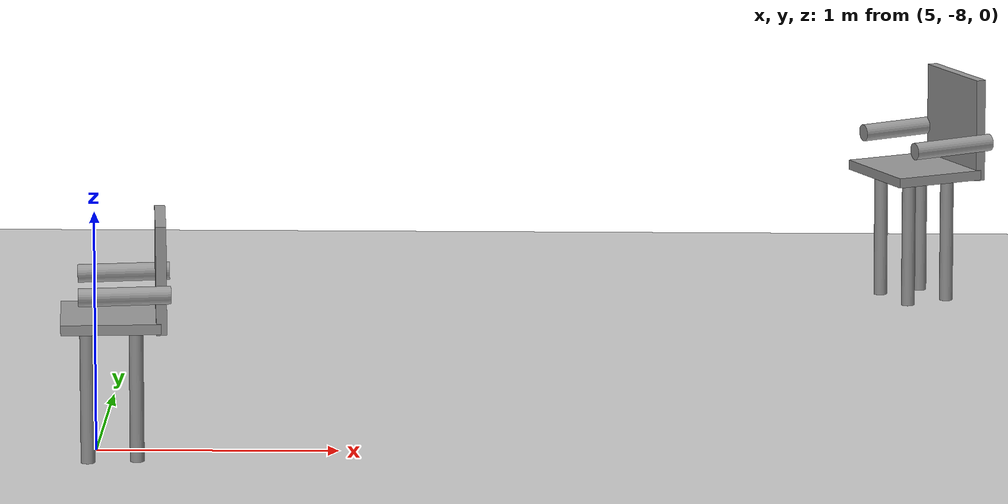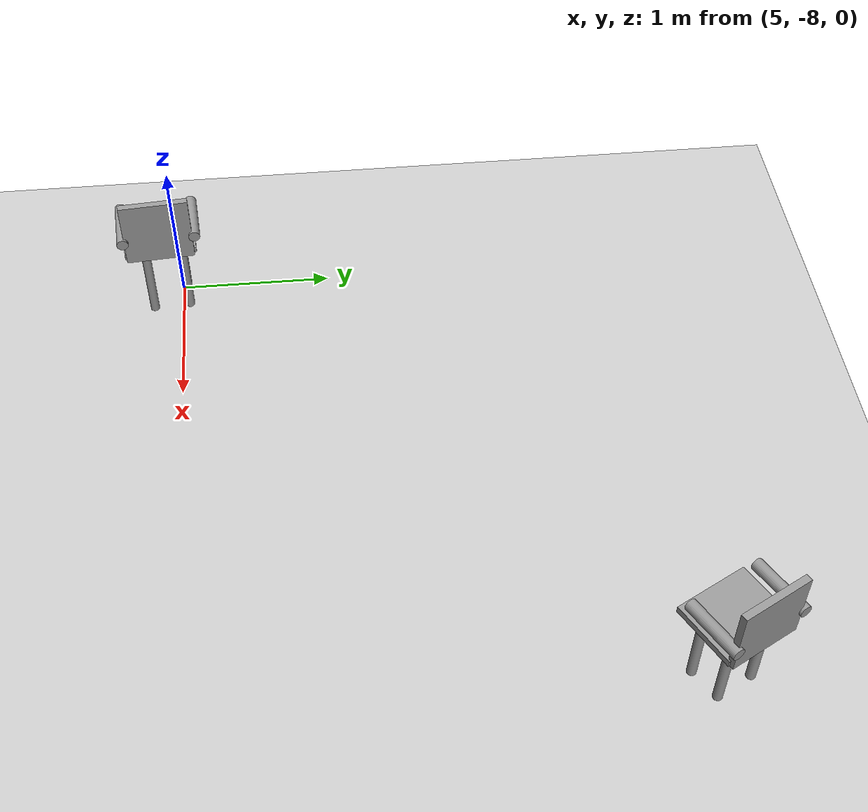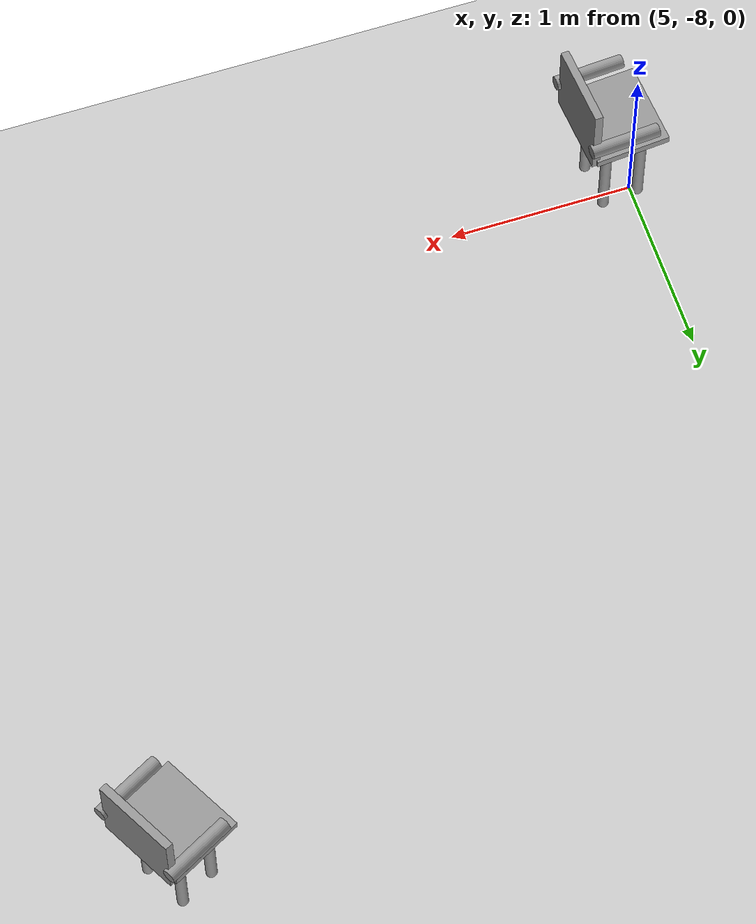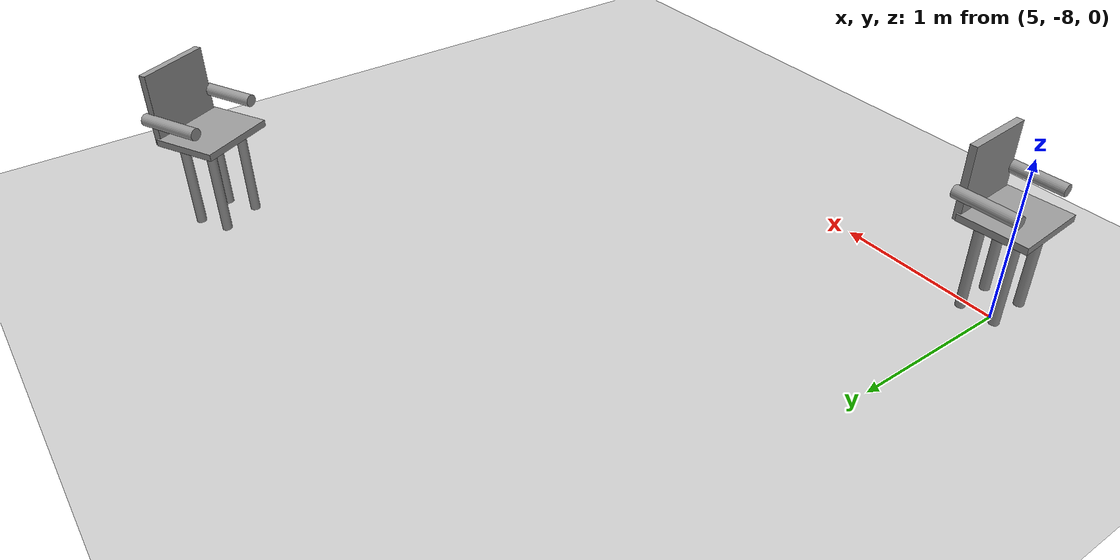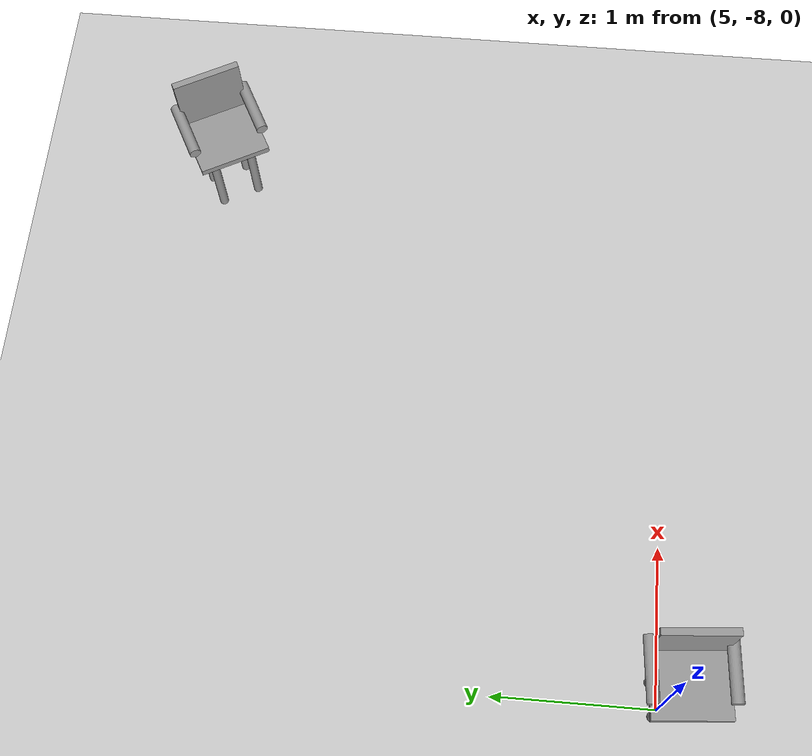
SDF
<sdf version="1.6">
 <world name="default">
  <model name="ground_plane">
   <static>1</static>
   <link name="link">
    <collision name="collision">
     <geometry><plane><normal>0 0 1</normal><size>100 100</size></plane></geometry>
     <surface>
      <contact><collide_bitmask>65535</collide_bitmask></contact>
      <friction><ode><mu>100</mu><mu2>50</mu2></ode></friction>
     </surface>
    </collision>
    <visual name="visual">
     <cast_shadows>0</cast_shadows>
     <geometry><plane><normal>0 0 1</normal><size>100 100</size></plane></geometry>
     <material>
      <script><uri>file://media/materials/scripts/gazebo.material</uri><name>Gazebo/Grey</name></script>
     </material>
    </visual>
   </link>
  </model>
  <model name="chair_clone">
   <link name="link_4">
    <inertial>
     <mass>0.00194051</mass>
     <inertia>
      <ixx>5.14044e-05</ixx>
      <ixy>0</ixy>
      <ixz>0</ixz>
      <iyy>5.14044e-05</iyy>
      <iyz>0</iyz>
      <izz>8.34973e-07</izz>
     </inertia>
    </inertial>
    <pose>-0.140129 -0.127166 -0.209129 0 -0 0</pose>
    <visual name="visual">
     <geometry><cylinder><radius>0.0293355</radius><length>0.561516</length></cylinder></geometry>
     <material>
      <lighting>1</lighting>
      <script><uri>file://media/materials/scripts/gazebo.material</uri><name>Gazebo/Grey</name></script>
      <emissive>0 0 0 1</emissive>
     </material>
    </visual>
    <collision name="collision">
     <geometry><cylinder><radius>0.029336</radius><length>0.561516</length></cylinder></geometry>
     <surface>
      <friction>
       <ode><mu>1</mu><mu2>1</mu2><fdir1>0 0 0</fdir1><slip1>0</slip1><slip2>0</slip2></ode>
       <torsional>
        <coefficient>1</coefficient>
        <patch_radius>0</patch_radius>
        <surface_radius>0</surface_radius>
        <use_patch_radius>1</use_patch_radius>
        <ode><slip>0</slip></ode>
       </torsional>
      </friction>
      <bounce><restitution_coefficient>0</restitution_coefficient><threshold>1e+06</threshold></bounce>
      <contact>
       <collide_without_contact>0</collide_without_contact>
       <collide_without_contact_bitmask>1</collide_without_contact_bitmask>
       <collide_bitmask>1</collide_bitmask>
       <ode>
        <soft_cfm>0</soft_cfm>
        <soft_erp>0.2</soft_erp>
        <kp>1e+13</kp>
        <kd>1</kd>
        <max_vel>0.01</max_vel>
        <min_depth>0</min_depth>
       </ode>
       <bullet>
        <split_impulse>1</split_impulse>
        <split_impulse_penetration_threshold>-0.01</split_impulse_penetration_threshold>
        <soft_cfm>0</soft_cfm>
        <soft_erp>0.2</soft_erp>
        <kp>1e+13</kp>
        <kd>1</kd>
       </bullet>
      </contact>
     </surface>
    </collision>
   </link>
   <link name="link_4_clone">
    <inertial>
     <mass>0.00194051</mass>
     <inertia>
      <ixx>5.14044e-05</ixx>
      <ixy>0</ixy>
      <ixz>0</ixz>
      <iyy>5.14044e-05</iyy>
      <iyz>0</iyz>
      <izz>8.34973e-07</izz>
     </inertia>
    </inertial>
    <pose>-0.139565 0.126187 -0.209129 0 -0 0</pose>
    <visual name="visual">
     <geometry><cylinder><radius>0.0293355</radius><length>0.561516</length></cylinder></geometry>
     <material>
      <lighting>1</lighting>
      <script><uri>file://media/materials/scripts/gazebo.material</uri><name>Gazebo/Grey</name></script>
      <shader type="pixel"/>
      <emissive>0 0 0 1</emissive>
     </material>
    </visual>
    <collision name="collision">
     <geometry><cylinder><radius>0.029336</radius><length>0.561516</length></cylinder></geometry>
     <surface>
      <friction>
       <ode><mu>1</mu><mu2>1</mu2><fdir1>0 0 0</fdir1><slip1>0</slip1><slip2>0</slip2></ode>
       <torsional>
        <coefficient>1</coefficient>
        <patch_radius>0</patch_radius>
        <surface_radius>0</surface_radius>
        <use_patch_radius>1</use_patch_radius>
        <ode><slip>0</slip></ode>
       </torsional>
      </friction>
      <bounce><restitution_coefficient>0</restitution_coefficient><threshold>1e+06</threshold></bounce>
      <contact>
       <collide_without_contact>0</collide_without_contact>
       <collide_without_contact_bitmask>1</collide_without_contact_bitmask>
       <collide_bitmask>1</collide_bitmask>
       <ode>
        <soft_cfm>0</soft_cfm>
        <soft_erp>0.2</soft_erp>
        <kp>1e+13</kp>
        <kd>1</kd>
        <max_vel>0.01</max_vel>
        <min_depth>0</min_depth>
       </ode>
       <bullet>
        <split_impulse>1</split_impulse>
        <split_impulse_penetration_threshold>-0.01</split_impulse_penetration_threshold>
        <soft_cfm>0</soft_cfm>
        <soft_erp>0.2</soft_erp>
        <kp>1e+13</kp>
        <kd>1</kd>
       </bullet>
      </contact>
     </surface>
    </collision>
   </link>
   <link name="link_4_clone_0">
    <inertial>
     <mass>0.00194051</mass>
     <inertia>
      <ixx>5.14044e-05</ixx>
      <ixy>0</ixy>
      <ixz>0</ixz>
      <iyy>5.14044e-05</iyy>
      <iyz>0</iyz>
      <izz>8.34973e-07</izz>
     </inertia>
    </inertial>
    <pose>0.062929 0.13105 -0.209129 0 -0 0</pose>
    <visual name="visual">
     <geometry><cylinder><radius>0.0293355</radius><length>0.561516</length></cylinder></geometry>
     <material>
      <lighting>1</lighting>
      <script><uri>file://media/materials/scripts/gazebo.material</uri><name>Gazebo/Grey</name></script>
      <shader type="pixel"/>
      <emissive>0 0 0 1</emissive>
     </material>
    </visual>
    <collision name="collision">
     <geometry><cylinder><radius>0.029336</radius><length>0.561516</length></cylinder></geometry>
     <surface>
      <friction>
       <ode><mu>1</mu><mu2>1</mu2><fdir1>0 0 0</fdir1><slip1>0</slip1><slip2>0</slip2></ode>
       <torsional>
        <coefficient>1</coefficient>
        <patch_radius>0</patch_radius>
        <surface_radius>0</surface_radius>
        <use_patch_radius>1</use_patch_radius>
        <ode><slip>0</slip></ode>
       </torsional>
      </friction>
      <bounce><restitution_coefficient>0</restitution_coefficient><threshold>1e+06</threshold></bounce>
      <contact>
       <collide_without_contact>0</collide_without_contact>
       <collide_without_contact_bitmask>1</collide_without_contact_bitmask>
       <collide_bitmask>1</collide_bitmask>
       <ode>
        <soft_cfm>0</soft_cfm>
        <soft_erp>0.2</soft_erp>
        <kp>1e+13</kp>
        <kd>1</kd>
        <max_vel>0.01</max_vel>
        <min_depth>0</min_depth>
       </ode>
       <bullet>
        <split_impulse>1</split_impulse>
        <split_impulse_penetration_threshold>-0.01</split_impulse_penetration_threshold>
        <soft_cfm>0</soft_cfm>
        <soft_erp>0.2</soft_erp>
        <kp>1e+13</kp>
        <kd>1</kd>
       </bullet>
      </contact>
     </surface>
    </collision>
   </link>
   <link name="link_4_clone_1">
    <inertial>
     <mass>0.00194051</mass>
     <inertia>
      <ixx>5.14044e-05</ixx>
      <ixy>0</ixy>
      <ixz>0</ixz>
      <iyy>5.14044e-05</iyy>
      <iyz>0</iyz>
      <izz>8.34973e-07</izz>
     </inertia>
    </inertial>
    <pose>0.061641 -0.111934 -0.209129 0 -0 0</pose>
    <visual name="visual">
     <geometry><cylinder><radius>0.0293355</radius><length>0.561516</length></cylinder></geometry>
     <material>
      <lighting>1</lighting>
      <script><uri>file://media/materials/scripts/gazebo.material</uri><name>Gazebo/Grey</name></script>
      <shader type="pixel"/>
      <emissive>0 0 0 1</emissive>
     </material>
    </visual>
    <collision name="collision">
     <geometry><cylinder><radius>0.029336</radius><length>0.561516</length></cylinder></geometry>
     <surface>
      <friction>
       <ode><mu>1</mu><mu2>1</mu2><fdir1>0 0 0</fdir1><slip1>0</slip1><slip2>0</slip2></ode>
       <torsional>
        <coefficient>1</coefficient>
        <patch_radius>0</patch_radius>
        <surface_radius>0</surface_radius>
        <use_patch_radius>1</use_patch_radius>
        <ode><slip>0</slip></ode>
       </torsional>
      </friction>
      <bounce><restitution_coefficient>0</restitution_coefficient><threshold>1e+06</threshold></bounce>
      <contact>
       <collide_without_contact>0</collide_without_contact>
       <collide_without_contact_bitmask>1</collide_without_contact_bitmask>
       <collide_bitmask>1</collide_bitmask>
       <ode>
        <soft_cfm>0</soft_cfm>
        <soft_erp>0.2</soft_erp>
        <kp>1e+13</kp>
        <kd>1</kd>
        <max_vel>0.01</max_vel>
        <min_depth>0</min_depth>
       </ode>
       <bullet>
        <split_impulse>1</split_impulse>
        <split_impulse_penetration_threshold>-0.01</split_impulse_penetration_threshold>
        <soft_cfm>0</soft_cfm>
        <soft_erp>0.2</soft_erp>
        <kp>1e+13</kp>
        <kd>1</kd>
       </bullet>
      </contact>
     </surface>
    </collision>
   </link>
   <link name="link_5">
    <inertial>
     <mass>0.00816884</mass>
     <inertia>
      <ixx>0.00015002</ixx>
      <ixy>0</ixy>
      <ixz>0</ixz>
      <iyy>0.000115328</iyy>
      <iyz>0</iyz>
      <izz>0.000262862</izz>
     </inertia>
    </inertial>
    <pose>-0.041662 -0.005028 0.089077 0 -0 0</pose>
    <visual name="visual">
     <geometry><box><size>0.409378 0.467496 0.042729</size></box></geometry>
     <material>
      <lighting>1</lighting>
      <script><uri>file://media/materials/scripts/gazebo.material</uri><name>Gazebo/Grey</name></script>
      <emissive>0 0 0 1</emissive>
     </material>
    </visual>
    <collision name="collision">
     <geometry><box><size>0.409378 0.467496 0.042729</size></box></geometry>
     <surface>
      <friction>
       <ode><mu>1</mu><mu2>1</mu2><fdir1>0 0 0</fdir1><slip1>0</slip1><slip2>0</slip2></ode>
       <torsional>
        <coefficient>1</coefficient>
        <patch_radius>0</patch_radius>
        <surface_radius>0</surface_radius>
        <use_patch_radius>1</use_patch_radius>
        <ode><slip>0</slip></ode>
       </torsional>
      </friction>
      <bounce><restitution_coefficient>0</restitution_coefficient><threshold>1e+06</threshold></bounce>
      <contact>
       <collide_without_contact>0</collide_without_contact>
       <collide_without_contact_bitmask>1</collide_without_contact_bitmask>
       <collide_bitmask>1</collide_bitmask>
       <ode>
        <soft_cfm>0</soft_cfm>
        <soft_erp>0.2</soft_erp>
        <kp>1e+13</kp>
        <kd>1</kd>
        <max_vel>0.01</max_vel>
        <min_depth>0</min_depth>
       </ode>
       <bullet>
        <split_impulse>1</split_impulse>
        <split_impulse_penetration_threshold>-0.01</split_impulse_penetration_threshold>
        <soft_cfm>0</soft_cfm>
        <soft_erp>0.2</soft_erp>
        <kp>1e+13</kp>
        <kd>1</kd>
       </bullet>
      </contact>
     </surface>
    </collision>
   </link>
   <link name="link_6">
    <inertial>
     <mass>0.00855687</mass>
     <inertia>
      <ixx>0.000285159</ixx>
      <ixy>0</ixy>
      <ixz>0</ixz>
      <iyy>0.000146983</iyy>
      <iyz>0</iyz>
      <izz>0.000140925</izz>
     </inertia>
    </inertial>
    <pose>0.165697 -0.006458 0.287866 0 -0 0</pose>
    <visual name="visual">
     <geometry><box><size>0.0439 0.442383 0.451884</size></box></geometry>
     <material>
      <lighting>1</lighting>
      <script><uri>file://media/materials/scripts/gazebo.material</uri><name>Gazebo/Grey</name></script>
      <emissive>0 0 0 1</emissive>
     </material>
    </visual>
    <collision name="collision">
     <geometry><box><size>0.0439 0.442383 0.451884</size></box></geometry>
     <surface>
      <friction>
       <ode><mu>1</mu><mu2>1</mu2><fdir1>0 0 0</fdir1><slip1>0</slip1><slip2>0</slip2></ode>
       <torsional>
        <coefficient>1</coefficient>
        <patch_radius>0</patch_radius>
        <surface_radius>0</surface_radius>
        <use_patch_radius>1</use_patch_radius>
        <ode><slip>0</slip></ode>
       </torsional>
      </friction>
      <bounce><restitution_coefficient>0</restitution_coefficient><threshold>1e+06</threshold></bounce>
      <contact>
       <collide_without_contact>0</collide_without_contact>
       <collide_without_contact_bitmask>1</collide_without_contact_bitmask>
       <collide_bitmask>1</collide_bitmask>
       <ode>
        <soft_cfm>0</soft_cfm>
        <soft_erp>0.2</soft_erp>
        <kp>1e+13</kp>
        <kd>1</kd>
        <max_vel>0.01</max_vel>
        <min_depth>0</min_depth>
       </ode>
       <bullet>
        <split_impulse>1</split_impulse>
        <split_impulse_penetration_threshold>-0.01</split_impulse_penetration_threshold>
        <soft_cfm>0</soft_cfm>
        <soft_erp>0.2</soft_erp>
        <kp>1e+13</kp>
        <kd>1</kd>
       </bullet>
      </contact>
     </surface>
    </collision>
   </link>
   <link name="link_7">
    <inertial>
     <mass>0.00209129</mass>
     <inertia>
      <ixx>2.57536e-05</ixx>
      <ixy>0</ixy>
      <ixz>0</ixz>
      <iyy>2.57536e-05</iyy>
      <iyz>0</iyz>
      <izz>1.44551e-06</izz>
     </inertia>
    </inertial>
    <pose>0.0147 0.228665 0.230372 0 1.55081 0</pose>
    <visual name="visual">
     <geometry><cylinder><radius>0.0371808</radius><length>0.378984</length></cylinder></geometry>
     <material>
      <lighting>1</lighting>
      <script><uri>file://media/materials/scripts/gazebo.material</uri><name>Gazebo/Grey</name></script>
      <emissive>0 0 0 1</emissive>
     </material>
    </visual>
    <collision name="collision">
     <geometry><cylinder><radius>0.037181</radius><length>0.378984</length></cylinder></geometry>
     <surface>
      <friction>
       <ode><mu>1</mu><mu2>1</mu2><fdir1>0 0 0</fdir1><slip1>0</slip1><slip2>0</slip2></ode>
       <torsional>
        <coefficient>1</coefficient>
        <patch_radius>0</patch_radius>
        <surface_radius>0</surface_radius>
        <use_patch_radius>1</use_patch_radius>
        <ode><slip>0</slip></ode>
       </torsional>
      </friction>
      <bounce><restitution_coefficient>0</restitution_coefficient><threshold>1e+06</threshold></bounce>
      <contact>
       <collide_without_contact>0</collide_without_contact>
       <collide_without_contact_bitmask>1</collide_without_contact_bitmask>
       <collide_bitmask>1</collide_bitmask>
       <ode>
        <soft_cfm>0</soft_cfm>
        <soft_erp>0.2</soft_erp>
        <kp>1e+13</kp>
        <kd>1</kd>
        <max_vel>0.01</max_vel>
        <min_depth>0</min_depth>
       </ode>
       <bullet>
        <split_impulse>1</split_impulse>
        <split_impulse_penetration_threshold>-0.01</split_impulse_penetration_threshold>
        <soft_cfm>0</soft_cfm>
        <soft_erp>0.2</soft_erp>
        <kp>1e+13</kp>
        <kd>1</kd>
       </bullet>
      </contact>
     </surface>
    </collision>
   </link>
   <link name="link_7_clone">
    <inertial>
     <mass>0.00209129</mass>
     <inertia>
      <ixx>2.57536e-05</ixx>
      <ixy>0</ixy>
      <ixz>0</ixz>
      <iyy>2.57536e-05</iyy>
      <iyz>0</iyz>
      <izz>1.44551e-06</izz>
     </inertia>
    </inertial>
    <pose>0.01639 -0.235319 0.229201 0 1.55081 0</pose>
    <visual name="visual">
     <geometry><cylinder><radius>0.0371808</radius><length>0.378984</length></cylinder></geometry>
     <material>
      <lighting>1</lighting>
      <script><uri>file://media/materials/scripts/gazebo.material</uri><name>Gazebo/Grey</name></script>
      <shader type="pixel"/>
      <emissive>0 0 0 1</emissive>
     </material>
    </visual>
    <collision name="collision">
     <geometry><cylinder><radius>0.037181</radius><length>0.378984</length></cylinder></geometry>
     <surface>
      <friction>
       <ode><mu>1</mu><mu2>1</mu2><fdir1>0 0 0</fdir1><slip1>0</slip1><slip2>0</slip2></ode>
       <torsional>
        <coefficient>1</coefficient>
        <patch_radius>0</patch_radius>
        <surface_radius>0</surface_radius>
        <use_patch_radius>1</use_patch_radius>
        <ode><slip>0</slip></ode>
       </torsional>
      </friction>
      <bounce><restitution_coefficient>0</restitution_coefficient><threshold>1e+06</threshold></bounce>
      <contact>
       <collide_without_contact>0</collide_without_contact>
       <collide_without_contact_bitmask>1</collide_without_contact_bitmask>
       <collide_bitmask>1</collide_bitmask>
       <ode>
        <soft_cfm>0</soft_cfm>
        <soft_erp>0.2</soft_erp>
        <kp>1e+13</kp>
        <kd>1</kd>
        <max_vel>0.01</max_vel>
        <min_depth>0</min_depth>
       </ode>
       <bullet>
        <split_impulse>1</split_impulse>
        <split_impulse_penetration_threshold>-0.01</split_impulse_penetration_threshold>
        <soft_cfm>0</soft_cfm>
        <soft_erp>0.2</soft_erp>
        <kp>1e+13</kp>
        <kd>1</kd>
       </bullet>
      </contact>
     </surface>
    </collision>
   </link>
   <joint name="link_5_JOINT_2" type="fixed">
    <parent>link_5</parent>
    <child>link_4_clone_1</child>
    <physics>
     <ode><limit><cfm>0</cfm><erp>0.2</erp></limit><suspension><cfm>0</cfm><erp>0.2</erp></suspension></ode>
    </physics>
   </joint>
   <joint name="link_5_JOINT_3" type="fixed">
    <parent>link_5</parent>
    <child>link_4</child>
    <physics>
     <ode><limit><cfm>0</cfm><erp>0.2</erp></limit><suspension><cfm>0</cfm><erp>0.2</erp></suspension></ode>
    </physics>
   </joint>
   <joint name="link_5_JOINT_4" type="fixed">
    <parent>link_5</parent>
    <child>link_4_clone_0</child>
    <physics>
     <ode><limit><cfm>0</cfm><erp>0.2</erp></limit><suspension><cfm>0</cfm><erp>0.2</erp></suspension></ode>
    </physics>
   </joint>
   <joint name="link_5_JOINT_5" type="fixed">
    <parent>link_5</parent>
    <child>link_4_clone</child>
    <physics>
     <ode><limit><cfm>0</cfm><erp>0.2</erp></limit><suspension><cfm>0</cfm><erp>0.2</erp></suspension></ode>
    </physics>
   </joint>
   <joint name="link_5_JOINT_6" type="fixed">
    <parent>link_5</parent>
    <child>link_6</child>
    <physics>
     <ode><limit><cfm>0</cfm><erp>0.2</erp></limit><suspension><cfm>0</cfm><erp>0.2</erp></suspension></ode>
    </physics>
   </joint>
   <joint name="link_5_JOINT_7" type="fixed">
    <parent>link_5</parent>
    <child>link_7</child>
    <physics>
     <ode><limit><cfm>0</cfm><erp>0.2</erp></limit><suspension><cfm>0</cfm><erp>0.2</erp></suspension></ode>
    </physics>
   </joint>
   <joint name="link_5_JOINT_8" type="fixed">
    <parent>link_5</parent>
    <child>link_7_clone</child>
    <physics>
     <ode><limit><cfm>0</cfm><erp>0.2</erp></limit><suspension><cfm>0</cfm><erp>0.2</erp></suspension></ode>
    </physics>
   </joint>
   <static>0</static>
   <pose>8.45829 -4.97015 0.489878 -0 3.5e-05 0.491418</pose>
  </model>
  <model name="chair_clone_8">
   <link name="link_4">
    <inertial>
     <mass>0.00194051</mass>
     <inertia>
      <ixx>5.14044e-05</ixx>
      <ixy>0</ixy>
      <ixz>0</ixz>
      <iyy>5.14044e-05</iyy>
      <iyz>0</iyz>
      <izz>8.34973e-07</izz>
     </inertia>
    </inertial>
    <pose>-0.140129 -0.127166 -0.209129 0 -0 0</pose>
    <visual name="visual">
     <geometry><cylinder><radius>0.0293355</radius><length>0.561516</length></cylinder></geometry>
     <material>
      <lighting>1</lighting>
      <script><uri>file://media/materials/scripts/gazebo.material</uri><name>Gazebo/Grey</name></script>
      <emissive>0 0 0 1</emissive>
     </material>
    </visual>
    <collision name="collision">
     <geometry><cylinder><radius>0.029336</radius><length>0.561516</length></cylinder></geometry>
     <surface>
      <friction>
       <ode><mu>1</mu><mu2>1</mu2><fdir1>0 0 0</fdir1><slip1>0</slip1><slip2>0</slip2></ode>
       <torsional>
        <coefficient>1</coefficient>
        <patch_radius>0</patch_radius>
        <surface_radius>0</surface_radius>
        <use_patch_radius>1</use_patch_radius>
        <ode><slip>0</slip></ode>
       </torsional>
      </friction>
      <bounce><restitution_coefficient>0</restitution_coefficient><threshold>1e+06</threshold></bounce>
      <contact>
       <collide_without_contact>0</collide_without_contact>
       <collide_without_contact_bitmask>1</collide_without_contact_bitmask>
       <collide_bitmask>1</collide_bitmask>
       <ode>
        <soft_cfm>0</soft_cfm>
        <soft_erp>0.2</soft_erp>
        <kp>1e+13</kp>
        <kd>1</kd>
        <max_vel>0.01</max_vel>
        <min_depth>0</min_depth>
       </ode>
       <bullet>
        <split_impulse>1</split_impulse>
        <split_impulse_penetration_threshold>-0.01</split_impulse_penetration_threshold>
        <soft_cfm>0</soft_cfm>
        <soft_erp>0.2</soft_erp>
        <kp>1e+13</kp>
        <kd>1</kd>
       </bullet>
      </contact>
     </surface>
    </collision>
   </link>
   <link name="link_4_clone">
    <inertial>
     <mass>0.00194051</mass>
     <inertia>
      <ixx>5.14044e-05</ixx>
      <ixy>0</ixy>
      <ixz>0</ixz>
      <iyy>5.14044e-05</iyy>
      <iyz>0</iyz>
      <izz>8.34973e-07</izz>
     </inertia>
    </inertial>
    <pose>-0.139565 0.126187 -0.209129 0 -0 0</pose>
    <visual name="visual">
     <geometry><cylinder><radius>0.0293355</radius><length>0.561516</length></cylinder></geometry>
     <material>
      <lighting>1</lighting>
      <script><uri>file://media/materials/scripts/gazebo.material</uri><name>Gazebo/Grey</name></script>
      <shader type="pixel"/>
      <emissive>0 0 0 1</emissive>
     </material>
    </visual>
    <collision name="collision">
     <geometry><cylinder><radius>0.029336</radius><length>0.561516</length></cylinder></geometry>
     <surface>
      <friction>
       <ode><mu>1</mu><mu2>1</mu2><fdir1>0 0 0</fdir1><slip1>0</slip1><slip2>0</slip2></ode>
       <torsional>
        <coefficient>1</coefficient>
        <patch_radius>0</patch_radius>
        <surface_radius>0</surface_radius>
        <use_patch_radius>1</use_patch_radius>
        <ode><slip>0</slip></ode>
       </torsional>
      </friction>
      <bounce><restitution_coefficient>0</restitution_coefficient><threshold>1e+06</threshold></bounce>
      <contact>
       <collide_without_contact>0</collide_without_contact>
       <collide_without_contact_bitmask>1</collide_without_contact_bitmask>
       <collide_bitmask>1</collide_bitmask>
       <ode>
        <soft_cfm>0</soft_cfm>
        <soft_erp>0.2</soft_erp>
        <kp>1e+13</kp>
        <kd>1</kd>
        <max_vel>0.01</max_vel>
        <min_depth>0</min_depth>
       </ode>
       <bullet>
        <split_impulse>1</split_impulse>
        <split_impulse_penetration_threshold>-0.01</split_impulse_penetration_threshold>
        <soft_cfm>0</soft_cfm>
        <soft_erp>0.2</soft_erp>
        <kp>1e+13</kp>
        <kd>1</kd>
       </bullet>
      </contact>
     </surface>
    </collision>
   </link>
   <link name="link_4_clone_0">
    <inertial>
     <mass>0.00194051</mass>
     <inertia>
      <ixx>5.14044e-05</ixx>
      <ixy>0</ixy>
      <ixz>0</ixz>
      <iyy>5.14044e-05</iyy>
      <iyz>0</iyz>
      <izz>8.34973e-07</izz>
     </inertia>
    </inertial>
    <pose>0.062929 0.13105 -0.209129 0 -0 0</pose>
    <visual name="visual">
     <geometry><cylinder><radius>0.0293355</radius><length>0.561516</length></cylinder></geometry>
     <material>
      <lighting>1</lighting>
      <script><uri>file://media/materials/scripts/gazebo.material</uri><name>Gazebo/Grey</name></script>
      <shader type="pixel"/>
      <emissive>0 0 0 1</emissive>
     </material>
    </visual>
    <collision name="collision">
     <geometry><cylinder><radius>0.029336</radius><length>0.561516</length></cylinder></geometry>
     <surface>
      <friction>
       <ode><mu>1</mu><mu2>1</mu2><fdir1>0 0 0</fdir1><slip1>0</slip1><slip2>0</slip2></ode>
       <torsional>
        <coefficient>1</coefficient>
        <patch_radius>0</patch_radius>
        <surface_radius>0</surface_radius>
        <use_patch_radius>1</use_patch_radius>
        <ode><slip>0</slip></ode>
       </torsional>
      </friction>
      <bounce><restitution_coefficient>0</restitution_coefficient><threshold>1e+06</threshold></bounce>
      <contact>
       <collide_without_contact>0</collide_without_contact>
       <collide_without_contact_bitmask>1</collide_without_contact_bitmask>
       <collide_bitmask>1</collide_bitmask>
       <ode>
        <soft_cfm>0</soft_cfm>
        <soft_erp>0.2</soft_erp>
        <kp>1e+13</kp>
        <kd>1</kd>
        <max_vel>0.01</max_vel>
        <min_depth>0</min_depth>
       </ode>
       <bullet>
        <split_impulse>1</split_impulse>
        <split_impulse_penetration_threshold>-0.01</split_impulse_penetration_threshold>
        <soft_cfm>0</soft_cfm>
        <soft_erp>0.2</soft_erp>
        <kp>1e+13</kp>
        <kd>1</kd>
       </bullet>
      </contact>
     </surface>
    </collision>
   </link>
   <link name="link_4_clone_1">
    <inertial>
     <mass>0.00194051</mass>
     <inertia>
      <ixx>5.14044e-05</ixx>
      <ixy>0</ixy>
      <ixz>0</ixz>
      <iyy>5.14044e-05</iyy>
      <iyz>0</iyz>
      <izz>8.34973e-07</izz>
     </inertia>
    </inertial>
    <pose>0.061641 -0.111934 -0.209129 0 -0 0</pose>
    <visual name="visual">
     <geometry><cylinder><radius>0.0293355</radius><length>0.561516</length></cylinder></geometry>
     <material>
      <lighting>1</lighting>
      <script><uri>file://media/materials/scripts/gazebo.material</uri><name>Gazebo/Grey</name></script>
      <shader type="pixel"/>
      <emissive>0 0 0 1</emissive>
     </material>
    </visual>
    <collision name="collision">
     <geometry><cylinder><radius>0.029336</radius><length>0.561516</length></cylinder></geometry>
     <surface>
      <friction>
       <ode><mu>1</mu><mu2>1</mu2><fdir1>0 0 0</fdir1><slip1>0</slip1><slip2>0</slip2></ode>
       <torsional>
        <coefficient>1</coefficient>
        <patch_radius>0</patch_radius>
        <surface_radius>0</surface_radius>
        <use_patch_radius>1</use_patch_radius>
        <ode><slip>0</slip></ode>
       </torsional>
      </friction>
      <bounce><restitution_coefficient>0</restitution_coefficient><threshold>1e+06</threshold></bounce>
      <contact>
       <collide_without_contact>0</collide_without_contact>
       <collide_without_contact_bitmask>1</collide_without_contact_bitmask>
       <collide_bitmask>1</collide_bitmask>
       <ode>
        <soft_cfm>0</soft_cfm>
        <soft_erp>0.2</soft_erp>
        <kp>1e+13</kp>
        <kd>1</kd>
        <max_vel>0.01</max_vel>
        <min_depth>0</min_depth>
       </ode>
       <bullet>
        <split_impulse>1</split_impulse>
        <split_impulse_penetration_threshold>-0.01</split_impulse_penetration_threshold>
        <soft_cfm>0</soft_cfm>
        <soft_erp>0.2</soft_erp>
        <kp>1e+13</kp>
        <kd>1</kd>
       </bullet>
      </contact>
     </surface>
    </collision>
   </link>
   <link name="link_5">
    <inertial>
     <mass>0.00816884</mass>
     <inertia>
      <ixx>0.00015002</ixx>
      <ixy>0</ixy>
      <ixz>0</ixz>
      <iyy>0.000115328</iyy>
      <iyz>0</iyz>
      <izz>0.000262862</izz>
     </inertia>
    </inertial>
    <pose>-0.041662 -0.005028 0.089077 0 -0 0</pose>
    <visual name="visual">
     <geometry><box><size>0.409378 0.467496 0.042729</size></box></geometry>
     <material>
      <lighting>1</lighting>
      <script><uri>file://media/materials/scripts/gazebo.material</uri><name>Gazebo/Grey</name></script>
      <emissive>0 0 0 1</emissive>
     </material>
    </visual>
    <collision name="collision">
     <geometry><box><size>0.409378 0.467496 0.042729</size></box></geometry>
     <surface>
      <friction>
       <ode><mu>1</mu><mu2>1</mu2><fdir1>0 0 0</fdir1><slip1>0</slip1><slip2>0</slip2></ode>
       <torsional>
        <coefficient>1</coefficient>
        <patch_radius>0</patch_radius>
        <surface_radius>0</surface_radius>
        <use_patch_radius>1</use_patch_radius>
        <ode><slip>0</slip></ode>
       </torsional>
      </friction>
      <bounce><restitution_coefficient>0</restitution_coefficient><threshold>1e+06</threshold></bounce>
      <contact>
       <collide_without_contact>0</collide_without_contact>
       <collide_without_contact_bitmask>1</collide_without_contact_bitmask>
       <collide_bitmask>1</collide_bitmask>
       <ode>
        <soft_cfm>0</soft_cfm>
        <soft_erp>0.2</soft_erp>
        <kp>1e+13</kp>
        <kd>1</kd>
        <max_vel>0.01</max_vel>
        <min_depth>0</min_depth>
       </ode>
       <bullet>
        <split_impulse>1</split_impulse>
        <split_impulse_penetration_threshold>-0.01</split_impulse_penetration_threshold>
        <soft_cfm>0</soft_cfm>
        <soft_erp>0.2</soft_erp>
        <kp>1e+13</kp>
        <kd>1</kd>
       </bullet>
      </contact>
     </surface>
    </collision>
   </link>
   <link name="link_6">
    <inertial>
     <mass>0.00855687</mass>
     <inertia>
      <ixx>0.000285159</ixx>
      <ixy>0</ixy>
      <ixz>0</ixz>
      <iyy>0.000146983</iyy>
      <iyz>0</iyz>
      <izz>0.000140925</izz>
     </inertia>
    </inertial>
    <pose>0.165697 -0.006458 0.287866 0 -0 0</pose>
    <visual name="visual">
     <geometry><box><size>0.0439 0.442383 0.451884</size></box></geometry>
     <material>
      <lighting>1</lighting>
      <script><uri>file://media/materials/scripts/gazebo.material</uri><name>Gazebo/Grey</name></script>
      <emissive>0 0 0 1</emissive>
     </material>
    </visual>
    <collision name="collision">
     <geometry><box><size>0.0439 0.442383 0.451884</size></box></geometry>
     <surface>
      <friction>
       <ode><mu>1</mu><mu2>1</mu2><fdir1>0 0 0</fdir1><slip1>0</slip1><slip2>0</slip2></ode>
       <torsional>
        <coefficient>1</coefficient>
        <patch_radius>0</patch_radius>
        <surface_radius>0</surface_radius>
        <use_patch_radius>1</use_patch_radius>
        <ode><slip>0</slip></ode>
       </torsional>
      </friction>
      <bounce><restitution_coefficient>0</restitution_coefficient><threshold>1e+06</threshold></bounce>
      <contact>
       <collide_without_contact>0</collide_without_contact>
       <collide_without_contact_bitmask>1</collide_without_contact_bitmask>
       <collide_bitmask>1</collide_bitmask>
       <ode>
        <soft_cfm>0</soft_cfm>
        <soft_erp>0.2</soft_erp>
        <kp>1e+13</kp>
        <kd>1</kd>
        <max_vel>0.01</max_vel>
        <min_depth>0</min_depth>
       </ode>
       <bullet>
        <split_impulse>1</split_impulse>
        <split_impulse_penetration_threshold>-0.01</split_impulse_penetration_threshold>
        <soft_cfm>0</soft_cfm>
        <soft_erp>0.2</soft_erp>
        <kp>1e+13</kp>
        <kd>1</kd>
       </bullet>
      </contact>
     </surface>
    </collision>
   </link>
   <link name="link_7">
    <inertial>
     <mass>0.00209129</mass>
     <inertia>
      <ixx>2.57536e-05</ixx>
      <ixy>0</ixy>
      <ixz>0</ixz>
      <iyy>2.57536e-05</iyy>
      <iyz>0</iyz>
      <izz>1.44551e-06</izz>
     </inertia>
    </inertial>
    <pose>0.0147 0.228665 0.230372 0 1.55081 0</pose>
    <visual name="visual">
     <geometry><cylinder><radius>0.0371808</radius><length>0.378984</length></cylinder></geometry>
     <material>
      <lighting>1</lighting>
      <script><uri>file://media/materials/scripts/gazebo.material</uri><name>Gazebo/Grey</name></script>
      <emissive>0 0 0 1</emissive>
     </material>
    </visual>
    <collision name="collision">
     <geometry><cylinder><radius>0.037181</radius><length>0.378984</length></cylinder></geometry>
     <surface>
      <friction>
       <ode><mu>1</mu><mu2>1</mu2><fdir1>0 0 0</fdir1><slip1>0</slip1><slip2>0</slip2></ode>
       <torsional>
        <coefficient>1</coefficient>
        <patch_radius>0</patch_radius>
        <surface_radius>0</surface_radius>
        <use_patch_radius>1</use_patch_radius>
        <ode><slip>0</slip></ode>
       </torsional>
      </friction>
      <bounce><restitution_coefficient>0</restitution_coefficient><threshold>1e+06</threshold></bounce>
      <contact>
       <collide_without_contact>0</collide_without_contact>
       <collide_without_contact_bitmask>1</collide_without_contact_bitmask>
       <collide_bitmask>1</collide_bitmask>
       <ode>
        <soft_cfm>0</soft_cfm>
        <soft_erp>0.2</soft_erp>
        <kp>1e+13</kp>
        <kd>1</kd>
        <max_vel>0.01</max_vel>
        <min_depth>0</min_depth>
       </ode>
       <bullet>
        <split_impulse>1</split_impulse>
        <split_impulse_penetration_threshold>-0.01</split_impulse_penetration_threshold>
        <soft_cfm>0</soft_cfm>
        <soft_erp>0.2</soft_erp>
        <kp>1e+13</kp>
        <kd>1</kd>
       </bullet>
      </contact>
     </surface>
    </collision>
   </link>
   <link name="link_7_clone">
    <inertial>
     <mass>0.00209129</mass>
     <inertia>
      <ixx>2.57536e-05</ixx>
      <ixy>0</ixy>
      <ixz>0</ixz>
      <iyy>2.57536e-05</iyy>
      <iyz>0</iyz>
      <izz>1.44551e-06</izz>
     </inertia>
    </inertial>
    <pose>0.01639 -0.235319 0.229201 0 1.55081 0</pose>
    <visual name="visual">
     <geometry><cylinder><radius>0.0371808</radius><length>0.378984</length></cylinder></geometry>
     <material>
      <lighting>1</lighting>
      <script><uri>file://media/materials/scripts/gazebo.material</uri><name>Gazebo/Grey</name></script>
      <shader type="pixel"/>
      <emissive>0 0 0 1</emissive>
     </material>
    </visual>
    <collision name="collision">
     <geometry><cylinder><radius>0.037181</radius><length>0.378984</length></cylinder></geometry>
     <surface>
      <friction>
       <ode><mu>1</mu><mu2>1</mu2><fdir1>0 0 0</fdir1><slip1>0</slip1><slip2>0</slip2></ode>
       <torsional>
        <coefficient>1</coefficient>
        <patch_radius>0</patch_radius>
        <surface_radius>0</surface_radius>
        <use_patch_radius>1</use_patch_radius>
        <ode><slip>0</slip></ode>
       </torsional>
      </friction>
      <bounce><restitution_coefficient>0</restitution_coefficient><threshold>1e+06</threshold></bounce>
      <contact>
       <collide_without_contact>0</collide_without_contact>
       <collide_without_contact_bitmask>1</collide_without_contact_bitmask>
       <collide_bitmask>1</collide_bitmask>
       <ode>
        <soft_cfm>0</soft_cfm>
        <soft_erp>0.2</soft_erp>
        <kp>1e+13</kp>
        <kd>1</kd>
        <max_vel>0.01</max_vel>
        <min_depth>0</min_depth>
       </ode>
       <bullet>
        <split_impulse>1</split_impulse>
        <split_impulse_penetration_threshold>-0.01</split_impulse_penetration_threshold>
        <soft_cfm>0</soft_cfm>
        <soft_erp>0.2</soft_erp>
        <kp>1e+13</kp>
        <kd>1</kd>
       </bullet>
      </contact>
     </surface>
    </collision>
   </link>
   <joint name="link_5_JOINT_2" type="fixed">
    <parent>link_5</parent>
    <child>link_4_clone_1</child>
    <physics>
     <ode><limit><cfm>0</cfm><erp>0.2</erp></limit><suspension><cfm>0</cfm><erp>0.2</erp></suspension></ode>
    </physics>
   </joint>
   <joint name="link_5_JOINT_3" type="fixed">
    <parent>link_5</parent>
    <child>link_4</child>
    <physics>
     <ode><limit><cfm>0</cfm><erp>0.2</erp></limit><suspension><cfm>0</cfm><erp>0.2</erp></suspension></ode>
    </physics>
   </joint>
   <joint name="link_5_JOINT_4" type="fixed">
    <parent>link_5</parent>
    <child>link_4_clone_0</child>
    <physics>
     <ode><limit><cfm>0</cfm><erp>0.2</erp></limit><suspension><cfm>0</cfm><erp>0.2</erp></suspension></ode>
    </physics>
   </joint>
   <joint name="link_5_JOINT_5" type="fixed">
    <parent>link_5</parent>
    <child>link_4_clone</child>
    <physics>
     <ode><limit><cfm>0</cfm><erp>0.2</erp></limit><suspension><cfm>0</cfm><erp>0.2</erp></suspension></ode>
    </physics>
   </joint>
   <joint name="link_5_JOINT_6" type="fixed">
    <parent>link_5</parent>
    <child>link_6</child>
    <physics>
     <ode><limit><cfm>0</cfm><erp>0.2</erp></limit><suspension><cfm>0</cfm><erp>0.2</erp></suspension></ode>
    </physics>
   </joint>
   <joint name="link_5_JOINT_7" type="fixed">
    <parent>link_5</parent>
    <child>link_7</child>
    <physics>
     <ode><limit><cfm>0</cfm><erp>0.2</erp></limit><suspension><cfm>0</cfm><erp>0.2</erp></suspension></ode>
    </physics>
   </joint>
   <joint name="link_5_JOINT_8" type="fixed">
    <parent>link_5</parent>
    <child>link_7_clone</child>
    <physics>
     <ode><limit><cfm>0</cfm><erp>0.2</erp></limit><suspension><cfm>0</cfm><erp>0.2</erp></suspension></ode>
    </physics>
   </joint>
   <static>0</static>
   <pose>5.11108 -8.09126 0.489878 0 3.3e-05 0.076721</pose>
  </model>
 </world>
</sdf>
